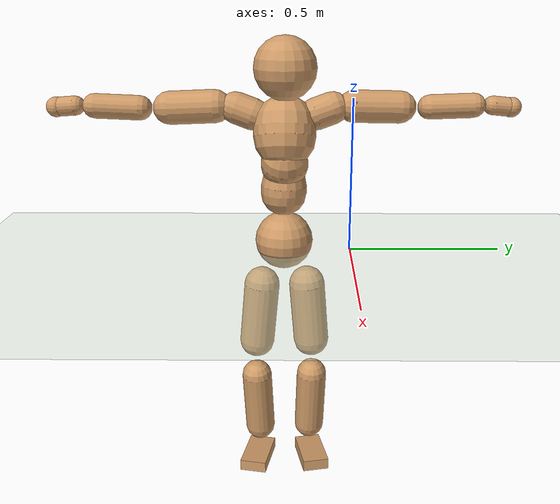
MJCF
<mujoco model="humanoid">
  <compiler coordinate="local"/>
  <default>
    <joint damping="0.0" armature="0.01" stiffness="0.0" limited="true"/>
    <geom conaffinity="1" condim="3" contype="7" margin="0.001" rgba="0.8 0.6 .4 1"/>
  </default>
  <asset>
    <texture type="skybox" builtin="gradient" rgb1=".4 .5 .6" rgb2="0 0 0" width="100" height="100"/>
    <texture builtin="flat" height="1278" mark="cross" markrgb="1 1 1" name="texgeom" random="0.01" rgb1="0.8 0.6 0.4" rgb2="0.8 0.6 0.4" type="cube" width="127"/>
    <texture builtin="checker" height="100" name="texplane" rgb1="0 0 0" rgb2="0.8 0.8 0.8" type="2d" width="100"/>
    <material name="MatPlane" reflectance="0.5" shininess="1" specular="1" texrepeat="60 60" texture="texplane"/>
    <material name="geom" texture="texgeom" texuniform="true"/>
  </asset>
  <worldbody>
    <light cutoff="100" diffuse="1 1 1" dir="-0 0 -1.3" directional="true" exponent="1" pos="0 0 1.3" specular=".1 .1 .1"/>
    <geom conaffinity="1" condim="3" name="floor" pos="0 0 0" rgba="0.8 0.9 0.8 1" size="100 100 .2" type="plane" material="MatPlane"/>
    <body name="Pelvis" pos="-0.0005 -0.2202 0.0319">
      <freejoint name="Pelvis"/>
      <geom type="sphere" contype="1" conaffinity="1" density="500" size="0.0958" pos="0.0000 0.0000 0.0000" name="Pelvis"/>
      <body name="L_Hip" pos="-0.0061 0.0725 -0.0911">
        <joint name="L_Hip_x" type="hinge" pos="0 0 0" axis="1 0 0" stiffness="800" damping="80" armature="0.02" range="-180.0000 180.0000"/>
        <joint name="L_Hip_y" type="hinge" pos="0 0 0" axis="0 1 0" stiffness="800" damping="80" armature="0.02" range="-180.0000 180.0000"/>
        <joint name="L_Hip_z" type="hinge" pos="0 0 0" axis="0 0 1" stiffness="800" damping="80" armature="0.02" range="-180.0000 180.0000"/>
        <geom type="capsule" contype="1" conaffinity="1" density="500" fromto="-0.0023 0.0055 -0.0712 -0.0090 0.0221 -0.2850" size="0.0609" name="L_Hip"/>
        <body name="L_Knee" pos="-0.0113 0.0276 -0.3562">
          <joint name="L_Knee_x" type="hinge" pos="0 0 0" axis="1 0 0" stiffness="800" damping="80" armature="0.02" range="-180.0000 180.0000"/>
          <joint name="L_Knee_y" type="hinge" pos="0 0 0" axis="0 1 0" stiffness="800" damping="80" armature="0.02" range="-180.0000 180.0000"/>
          <joint name="L_Knee_z" type="hinge" pos="0 0 0" axis="0 0 1" stiffness="800" damping="80" armature="0.02" range="-180.0000 180.0000"/>
          <geom type="capsule" contype="1" conaffinity="1" density="500" fromto="-0.0087 -0.0023 -0.0756 -0.0348 -0.0094 -0.3024" size="0.0528" name="L_Knee"/>
          <body name="L_Ankle" pos="-0.0435 -0.0117 -0.378">
            <joint name="L_Ankle_x" type="hinge" pos="0 0 0" axis="1 0 0" stiffness="800" damping="80" armature="0.02" range="-180.0000 180.0000"/>
            <joint name="L_Ankle_y" type="hinge" pos="0 0 0" axis="0 1 0" stiffness="800" damping="80" armature="0.02" range="-180.0000 180.0000"/>
            <joint name="L_Ankle_z" type="hinge" pos="0 0 0" axis="0 0 1" stiffness="800" damping="80" armature="0.02" range="-180.0000 180.0000"/>
            <geom type="box" contype="1" conaffinity="1" density="500" pos="0.0569 0.0116 -0.0273" size="0.0814 0.0463 0.0204" quat="0.9950 0.0000 0.0000 0.1002" name="L_Ankle"/>
            <body name="L_Toe" pos="0.1139 0.0232 -0.0545">
              <joint name="L_Toe_x" type="hinge" pos="0 0 0" axis="1 0 0" stiffness="500" damping="50" armature="0.02" range="-180.0000 180.0000"/>
              <joint name="L_Toe_y" type="hinge" pos="0 0 0" axis="0 1 0" stiffness="500" damping="50" armature="0.02" range="-180.0000 180.0000"/>
              <joint name="L_Toe_z" type="hinge" pos="0 0 0" axis="0 0 1" stiffness="500" damping="50" armature="0.02" range="-180.0000 180.0000"/>
              <geom type="box" contype="1" conaffinity="1" density="500" pos="0.0000 0.0000 0.0265" size="0.001 0.0023 0.001" quat="0.9943 0.0000 0.0000 0.1067" name="L_Toe"/>
            </body>
          </body>
        </body>
      </body>
      <body name="R_Hip" pos="-0.0027 -0.07 -0.0911">
        <joint name="R_Hip_x" type="hinge" pos="0 0 0" axis="1 0 0" stiffness="800" damping="80" armature="0.02" range="-180.0000 180.0000"/>
        <joint name="R_Hip_y" type="hinge" pos="0 0 0" axis="0 1 0" stiffness="800" damping="80" armature="0.02" range="-180.0000 180.0000"/>
        <joint name="R_Hip_z" type="hinge" pos="0 0 0" axis="0 0 1" stiffness="800" damping="80" armature="0.02" range="-180.0000 180.0000"/>
        <geom type="capsule" contype="1" conaffinity="1" density="500" fromto="-0.0026 -0.0067 -0.0724 -0.0106 -0.0269 -0.2897" size="0.0602" name="R_Hip"/>
        <body name="R_Knee" pos="-0.0132 -0.0336 -0.3622">
          <joint name="R_Knee_x" type="hinge" pos="0 0 0" axis="1 0 0" stiffness="800" damping="80" armature="0.02" range="-180.0000 180.0000"/>
          <joint name="R_Knee_y" type="hinge" pos="0 0 0" axis="0 1 0" stiffness="800" damping="80" armature="0.02" range="-180.0000 180.0000"/>
          <joint name="R_Knee_z" type="hinge" pos="0 0 0" axis="0 0 1" stiffness="800" damping="80" armature="0.02" range="-180.0000 180.0000"/>
          <geom type="capsule" contype="1" conaffinity="1" density="500" fromto="-0.0084 0.0029 -0.0758 -0.0335 0.0114 -0.3031" size="0.0531" name="R_Knee"/>
          <body name="R_Ankle" pos="-0.0419 0.0143 -0.3788">
            <joint name="R_Ankle_x" type="hinge" pos="0 0 0" axis="1 0 0" stiffness="800" damping="80" armature="0.02" range="-180.0000 180.0000"/>
            <joint name="R_Ankle_y" type="hinge" pos="0 0 0" axis="0 1 0" stiffness="800" damping="80" armature="0.02" range="-180.0000 180.0000"/>
            <joint name="R_Ankle_z" type="hinge" pos="0 0 0" axis="0 0 1" stiffness="800" damping="80" armature="0.02" range="-180.0000 180.0000"/>
            <geom type="box" contype="1" conaffinity="1" density="500" pos="0.0589 -0.0111 -0.0231" size="0.0828 0.0469 0.0201" quat="0.9956 0.0000 0.0000 -0.0932" name="R_Ankle"/>
            <body name="R_Toe" pos="0.1178 -0.0223 -0.0462">
              <joint name="R_Toe_x" type="hinge" pos="0 0 0" axis="1 0 0" stiffness="500" damping="50" armature="0.02" range="-180.0000 180.0000"/>
              <joint name="R_Toe_y" type="hinge" pos="0 0 0" axis="0 1 0" stiffness="500" damping="50" armature="0.02" range="-180.0000 180.0000"/>
              <joint name="R_Toe_z" type="hinge" pos="0 0 0" axis="0 0 1" stiffness="500" damping="50" armature="0.02" range="-180.0000 180.0000"/>
              <geom type="box" contype="1" conaffinity="1" density="500" pos="0.0000 0.0000 0.0250" size="0.0009 0.0023 0.0011" quat="0.9965 0.0000 0.0000 -0.0837" name="R_Toe"/>
            </body>
          </body>
        </body>
      </body>
      <body name="Torso" pos="-0.0246 -0.0025 0.1052">
        <joint name="Torso_x" type="hinge" pos="0 0 0" axis="1 0 0" stiffness="1000" damping="100" armature="0.02" range="-180.0000 180.0000"/>
        <joint name="Torso_y" type="hinge" pos="0 0 0" axis="0 1 0" stiffness="1000" damping="100" armature="0.02" range="-180.0000 180.0000"/>
        <joint name="Torso_z" type="hinge" pos="0 0 0" axis="0 0 1" stiffness="1000" damping="100" armature="0.02" range="-180.0000 180.0000"/>
        <geom type="capsule" contype="1" conaffinity="1" density="500" fromto="-0.0006 0.0021 0.0764 -0.0004 0.0014 0.0509" size="0.0756" name="Torso"/>
        <body name="Spine" pos="-0.001 0.0035 0.1273">
          <joint name="Spine_x" type="hinge" pos="0 0 0" axis="1 0 0" stiffness="1000" damping="100" armature="0.02" range="-180.0000 180.0000"/>
          <joint name="Spine_y" type="hinge" pos="0 0 0" axis="0 1 0" stiffness="1000" damping="100" armature="0.02" range="-180.0000 180.0000"/>
          <joint name="Spine_z" type="hinge" pos="0 0 0" axis="0 0 1" stiffness="1000" damping="100" armature="0.02" range="-180.0000 180.0000"/>
          <geom type="capsule" contype="1" conaffinity="1" density="500" fromto="0.0183 0.0014 0.0304 0.0122 0.0009 0.0202" size="0.0772" name="Spine"/>
          <body name="Chest" pos="0.0305 0.0023 0.0506">
            <joint name="Chest_x" type="hinge" pos="0 0 0" axis="1 0 0" stiffness="1000" damping="100" armature="0.02" range="-180.0000 180.0000"/>
            <joint name="Chest_y" type="hinge" pos="0 0 0" axis="0 1 0" stiffness="1000" damping="100" armature="0.02" range="-180.0000 180.0000"/>
            <joint name="Chest_z" type="hinge" pos="0 0 0" axis="0 0 1" stiffness="1000" damping="100" armature="0.02" range="-180.0000 180.0000"/>
            <geom type="capsule" contype="1" conaffinity="1" density="500" fromto="-0.0291 -0.0004 0.0924 -0.0194 -0.0003 0.0616" size="0.1014" name="Chest"/>
            <body name="Neck" pos="-0.0587 -0.0007 0.2166">
              <joint name="Neck_x" type="hinge" pos="0 0 0" axis="1 0 0" stiffness="500" damping="50" armature="0.02" range="-180.0000 180.0000"/>
              <joint name="Neck_y" type="hinge" pos="0 0 0" axis="0 1 0" stiffness="500" damping="50" armature="0.02" range="-180.0000 180.0000"/>
              <joint name="Neck_z" type="hinge" pos="0 0 0" axis="0 0 1" stiffness="500" damping="50" armature="0.02" range="-180.0000 180.0000"/>
              <geom type="capsule" contype="1" conaffinity="1" density="500" fromto="0.0100 0.0006 0.0121 0.0401 0.0023 0.0486" size="0.0426" name="Neck"/>
              <body name="Head" pos="0.0502 0.0028 0.0607">
                <joint name="Head_x" type="hinge" pos="0 0 0" axis="1 0 0" stiffness="500" damping="50" armature="0.02" range="-180.0000 180.0000"/>
                <joint name="Head_y" type="hinge" pos="0 0 0" axis="0 1 0" stiffness="500" damping="50" armature="0.02" range="-180.0000 180.0000"/>
                <joint name="Head_z" type="hinge" pos="0 0 0" axis="0 0 1" stiffness="500" damping="50" armature="0.02" range="-180.0000 180.0000"/>
                <geom type="sphere" contype="1" conaffinity="1" density="500" size="0.1003" pos="0.0000 0.0000 0.0000" name="Head"/>
              </body>
            </body>
            <body name="L_Thorax" pos="-0.0409 0.0809 0.124">
              <joint name="L_Thorax_x" type="hinge" pos="0 0 0" axis="1 0 0" stiffness="500" damping="50" armature="0.02" range="-180.0000 180.0000"/>
              <joint name="L_Thorax_y" type="hinge" pos="0 0 0" axis="0 1 0" stiffness="500" damping="50" armature="0.02" range="-180.0000 180.0000"/>
              <joint name="L_Thorax_z" type="hinge" pos="0 0 0" axis="0 0 1" stiffness="500" damping="50" armature="0.02" range="-180.0000 180.0000"/>
              <geom type="capsule" contype="1" conaffinity="1" density="500" fromto="-0.0018 0.0180 0.0062 -0.0072 0.0720 0.0249" size="0.0523" name="L_Thorax"/>
              <body name="L_Shoulder" pos="-0.009 0.0901 0.0311">
                <joint name="L_Shoulder_x" type="hinge" pos="0 0 0" axis="1 0 0" stiffness="500" damping="50" armature="0.02" range="-720.0000 720.0000"/>
                <joint name="L_Shoulder_y" type="hinge" pos="0 0 0" axis="0 1 0" stiffness="500" damping="50" armature="0.02" range="-720.0000 720.0000"/>
                <joint name="L_Shoulder_z" type="hinge" pos="0 0 0" axis="0 0 1" stiffness="500" damping="50" armature="0.02" range="-720.0000 720.0000"/>
                <geom type="capsule" contype="1" conaffinity="1" density="500" fromto="-0.0055 0.0503 -0.0018 -0.0219 0.2011 -0.0071" size="0.052" name="L_Shoulder"/>
                <body name="L_Elbow" pos="-0.0274 0.2514 -0.0089">
                  <joint name="L_Elbow_x" type="hinge" pos="0 0 0" axis="1 0 0" stiffness="500" damping="50" armature="0.02" range="-720.0000 720.0000"/>
                  <joint name="L_Elbow_y" type="hinge" pos="0 0 0" axis="0 1 0" stiffness="500" damping="50" armature="0.02" range="-720.0000 720.0000"/>
                  <joint name="L_Elbow_z" type="hinge" pos="0 0 0" axis="0 0 1" stiffness="500" damping="50" armature="0.02" range="-720.0000 720.0000"/>
                  <geom type="capsule" contype="1" conaffinity="1" density="500" fromto="0.0001 0.0468 0.0017 0.0003 0.1872 0.0069" size="0.0399" name="L_Elbow"/>
                  <body name="L_Wrist" pos="0.0004 0.234 0.0086">
                    <joint name="L_Wrist_x" type="hinge" pos="0 0 0" axis="1 0 0" stiffness="300" damping="30" armature="0.02" range="-180.0000 180.0000"/>
                    <joint name="L_Wrist_y" type="hinge" pos="0 0 0" axis="0 1 0" stiffness="300" damping="30" armature="0.02" range="-180.0000 180.0000"/>
                    <joint name="L_Wrist_z" type="hinge" pos="0 0 0" axis="0 0 1" stiffness="300" damping="30" armature="0.02" range="-180.0000 180.0000"/>
                    <geom type="capsule" contype="1" conaffinity="1" density="500" fromto="-0.0026 0.0160 -0.0019 -0.0105 0.0641 -0.0076" size="0.0306" name="L_Wrist"/>
                    <body name="L_Hand" pos="-0.0131 0.0801 -0.0095">
                      <joint name="L_Hand_x" type="hinge" pos="0 0 0" axis="1 0 0" stiffness="300" damping="30" armature="0.02" range="-180.0000 180.0000"/>
                      <joint name="L_Hand_y" type="hinge" pos="0 0 0" axis="0 1 0" stiffness="300" damping="30" armature="0.02" range="-180.0000 180.0000"/>
                      <joint name="L_Hand_z" type="hinge" pos="0 0 0" axis="0 0 1" stiffness="300" damping="30" armature="0.02" range="-180.0000 180.0000"/>
                      <geom type="sphere" contype="1" conaffinity="1" density="500" size="0.0324" pos="0.0000 0.0000 0.0000" name="L_Hand"/>
                    </body>
                  </body>
                </body>
              </body>
            </body>
            <body name="R_Thorax" pos="-0.0461 -0.0825 0.1213">
              <joint name="R_Thorax_x" type="hinge" pos="0 0 0" axis="1 0 0" stiffness="500" damping="50" armature="0.02" range="-180.0000 180.0000"/>
              <joint name="R_Thorax_y" type="hinge" pos="0 0 0" axis="0 1 0" stiffness="500" damping="50" armature="0.02" range="-180.0000 180.0000"/>
              <joint name="R_Thorax_z" type="hinge" pos="0 0 0" axis="0 0 1" stiffness="500" damping="50" armature="0.02" range="-180.0000 180.0000"/>
              <geom type="capsule" contype="1" conaffinity="1" density="500" fromto="-0.0024 -0.0188 0.0066 -0.0096 -0.0753 0.0265" size="0.0515" name="R_Thorax"/>
              <body name="R_Shoulder" pos="-0.012 -0.0941 0.0331">
                <joint name="R_Shoulder_x" type="hinge" pos="0 0 0" axis="1 0 0" stiffness="500" damping="50" armature="0.02" range="-720.0000 720.0000"/>
                <joint name="R_Shoulder_y" type="hinge" pos="0 0 0" axis="0 1 0" stiffness="500" damping="50" armature="0.02" range="-720.0000 720.0000"/>
                <joint name="R_Shoulder_z" type="hinge" pos="0 0 0" axis="0 0 1" stiffness="500" damping="50" armature="0.02" range="-720.0000 720.0000"/>
                <geom type="capsule" contype="1" conaffinity="1" density="500" fromto="-0.0040 -0.0495 -0.0026 -0.0159 -0.1978 -0.0103" size="0.0538" name="R_Shoulder"/>
                <body name="R_Elbow" pos="-0.0199 -0.2473 -0.0129">
                  <joint name="R_Elbow_x" type="hinge" pos="0 0 0" axis="1 0 0" stiffness="500" damping="50" armature="0.02" range="-720.0000 720.0000"/>
                  <joint name="R_Elbow_y" type="hinge" pos="0 0 0" axis="0 1 0" stiffness="500" damping="50" armature="0.02" range="-720.0000 720.0000"/>
                  <joint name="R_Elbow_z" type="hinge" pos="0 0 0" axis="0 0 1" stiffness="500" damping="50" armature="0.02" range="-720.0000 720.0000"/>
                  <geom type="capsule" contype="1" conaffinity="1" density="500" fromto="-0.0005 -0.0486 0.0020 -0.0021 -0.1944 0.0078" size="0.0404" name="R_Elbow"/>
                  <body name="R_Wrist" pos="-0.0027 -0.243 0.0098">
                    <joint name="R_Wrist_x" type="hinge" pos="0 0 0" axis="1 0 0" stiffness="300" damping="30" armature="0.02" range="-180.0000 180.0000"/>
                    <joint name="R_Wrist_y" type="hinge" pos="0 0 0" axis="0 1 0" stiffness="300" damping="30" armature="0.02" range="-180.0000 180.0000"/>
                    <joint name="R_Wrist_z" type="hinge" pos="0 0 0" axis="0 0 1" stiffness="300" damping="30" armature="0.02" range="-180.0000 180.0000"/>
                    <geom type="capsule" contype="1" conaffinity="1" density="500" fromto="-0.0021 -0.0163 -0.0015 -0.0084 -0.0653 -0.0058" size="0.0315" name="R_Wrist"/>
                    <body name="R_Hand" pos="-0.0106 -0.0816 -0.0073">
                      <joint name="R_Hand_x" type="hinge" pos="0 0 0" axis="1 0 0" stiffness="300" damping="30" armature="0.02" range="-180.0000 180.0000"/>
                      <joint name="R_Hand_y" type="hinge" pos="0 0 0" axis="0 1 0" stiffness="300" damping="30" armature="0.02" range="-180.0000 180.0000"/>
                      <joint name="R_Hand_z" type="hinge" pos="0 0 0" axis="0 0 1" stiffness="300" damping="30" armature="0.02" range="-180.0000 180.0000"/>
                      <geom type="sphere" contype="1" conaffinity="1" density="500" size="0.0329" pos="0.0000 0.0000 0.0000" name="R_Hand"/>
                    </body>
                  </body>
                </body>
              </body>
            </body>
          </body>
        </body>
      </body>
    </body>
  </worldbody>
  <actuator>
    <motor name="L_Hip_x" joint="L_Hip_x" gear="500"/>
    <motor name="L_Hip_y" joint="L_Hip_y" gear="500"/>
    <motor name="L_Hip_z" joint="L_Hip_z" gear="500"/>
    <motor name="L_Knee_x" joint="L_Knee_x" gear="500"/>
    <motor name="L_Knee_y" joint="L_Knee_y" gear="500"/>
    <motor name="L_Knee_z" joint="L_Knee_z" gear="500"/>
    <motor name="L_Ankle_x" joint="L_Ankle_x" gear="500"/>
    <motor name="L_Ankle_y" joint="L_Ankle_y" gear="500"/>
    <motor name="L_Ankle_z" joint="L_Ankle_z" gear="500"/>
    <motor name="L_Toe_x" joint="L_Toe_x" gear="500"/>
    <motor name="L_Toe_y" joint="L_Toe_y" gear="500"/>
    <motor name="L_Toe_z" joint="L_Toe_z" gear="500"/>
    <motor name="R_Hip_x" joint="R_Hip_x" gear="500"/>
    <motor name="R_Hip_y" joint="R_Hip_y" gear="500"/>
    <motor name="R_Hip_z" joint="R_Hip_z" gear="500"/>
    <motor name="R_Knee_x" joint="R_Knee_x" gear="500"/>
    <motor name="R_Knee_y" joint="R_Knee_y" gear="500"/>
    <motor name="R_Knee_z" joint="R_Knee_z" gear="500"/>
    <motor name="R_Ankle_x" joint="R_Ankle_x" gear="500"/>
    <motor name="R_Ankle_y" joint="R_Ankle_y" gear="500"/>
    <motor name="R_Ankle_z" joint="R_Ankle_z" gear="500"/>
    <motor name="R_Toe_x" joint="R_Toe_x" gear="500"/>
    <motor name="R_Toe_y" joint="R_Toe_y" gear="500"/>
    <motor name="R_Toe_z" joint="R_Toe_z" gear="500"/>
    <motor name="Torso_x" joint="Torso_x" gear="500"/>
    <motor name="Torso_y" joint="Torso_y" gear="500"/>
    <motor name="Torso_z" joint="Torso_z" gear="500"/>
    <motor name="Spine_x" joint="Spine_x" gear="500"/>
    <motor name="Spine_y" joint="Spine_y" gear="500"/>
    <motor name="Spine_z" joint="Spine_z" gear="500"/>
    <motor name="Chest_x" joint="Chest_x" gear="500"/>
    <motor name="Chest_y" joint="Chest_y" gear="500"/>
    <motor name="Chest_z" joint="Chest_z" gear="500"/>
    <motor name="Neck_x" joint="Neck_x" gear="500"/>
    <motor name="Neck_y" joint="Neck_y" gear="500"/>
    <motor name="Neck_z" joint="Neck_z" gear="500"/>
    <motor name="Head_x" joint="Head_x" gear="500"/>
    <motor name="Head_y" joint="Head_y" gear="500"/>
    <motor name="Head_z" joint="Head_z" gear="500"/>
    <motor name="L_Thorax_x" joint="L_Thorax_x" gear="500"/>
    <motor name="L_Thorax_y" joint="L_Thorax_y" gear="500"/>
    <motor name="L_Thorax_z" joint="L_Thorax_z" gear="500"/>
    <motor name="L_Shoulder_x" joint="L_Shoulder_x" gear="500"/>
    <motor name="L_Shoulder_y" joint="L_Shoulder_y" gear="500"/>
    <motor name="L_Shoulder_z" joint="L_Shoulder_z" gear="500"/>
    <motor name="L_Elbow_x" joint="L_Elbow_x" gear="500"/>
    <motor name="L_Elbow_y" joint="L_Elbow_y" gear="500"/>
    <motor name="L_Elbow_z" joint="L_Elbow_z" gear="500"/>
    <motor name="L_Wrist_x" joint="L_Wrist_x" gear="500"/>
    <motor name="L_Wrist_y" joint="L_Wrist_y" gear="500"/>
    <motor name="L_Wrist_z" joint="L_Wrist_z" gear="500"/>
    <motor name="L_Hand_x" joint="L_Hand_x" gear="500"/>
    <motor name="L_Hand_y" joint="L_Hand_y" gear="500"/>
    <motor name="L_Hand_z" joint="L_Hand_z" gear="500"/>
    <motor name="R_Thorax_x" joint="R_Thorax_x" gear="500"/>
    <motor name="R_Thorax_y" joint="R_Thorax_y" gear="500"/>
    <motor name="R_Thorax_z" joint="R_Thorax_z" gear="500"/>
    <motor name="R_Shoulder_x" joint="R_Shoulder_x" gear="500"/>
    <motor name="R_Shoulder_y" joint="R_Shoulder_y" gear="500"/>
    <motor name="R_Shoulder_z" joint="R_Shoulder_z" gear="500"/>
    <motor name="R_Elbow_x" joint="R_Elbow_x" gear="500"/>
    <motor name="R_Elbow_y" joint="R_Elbow_y" gear="500"/>
    <motor name="R_Elbow_z" joint="R_Elbow_z" gear="500"/>
    <motor name="R_Wrist_x" joint="R_Wrist_x" gear="500"/>
    <motor name="R_Wrist_y" joint="R_Wrist_y" gear="500"/>
    <motor name="R_Wrist_z" joint="R_Wrist_z" gear="500"/>
    <motor name="R_Hand_x" joint="R_Hand_x" gear="500"/>
    <motor name="R_Hand_y" joint="R_Hand_y" gear="500"/>
    <motor name="R_Hand_z" joint="R_Hand_z" gear="500"/>
  </actuator>
  <contact>
    <exclude body1="Torso" body2="Chest"/>
    <exclude body1="Head" body2="Chest"/>
    <exclude body1="R_Knee" body2="R_Toe"/>
    <exclude body1="R_Knee" body2="L_Ankle"/>
    <exclude body1="R_Knee" body2="L_Toe"/>
    <exclude body1="L_Knee" body2="L_Toe"/>
    <exclude body1="L_Knee" body2="R_Ankle"/>
    <exclude body1="L_Knee" body2="R_Toe"/>
    <exclude body1="L_Shoulder" body2="Chest"/>
    <exclude body1="R_Shoulder" body2="Chest"/>
  </contact>
  <sensor/>
  <size njmax="700" nconmax="700"/>
</mujoco>
